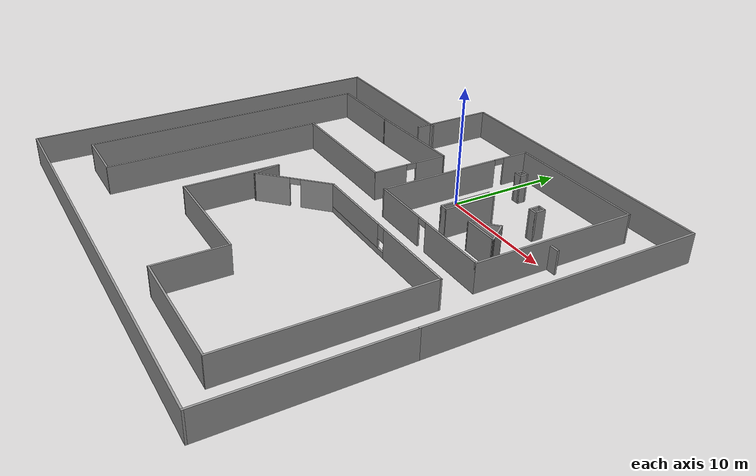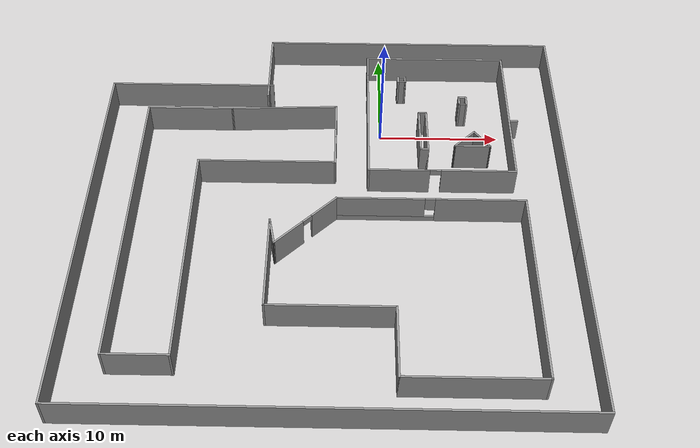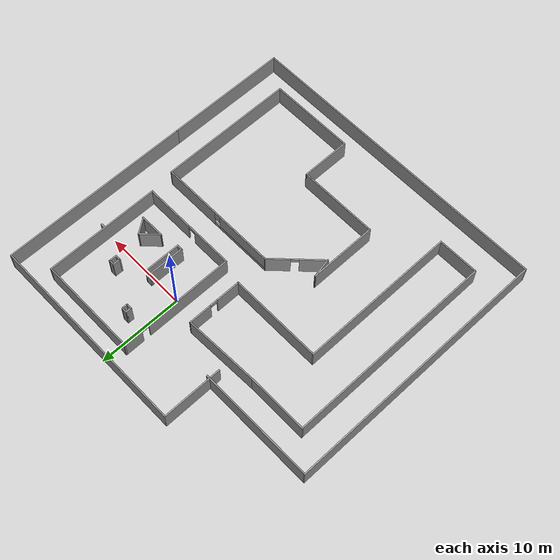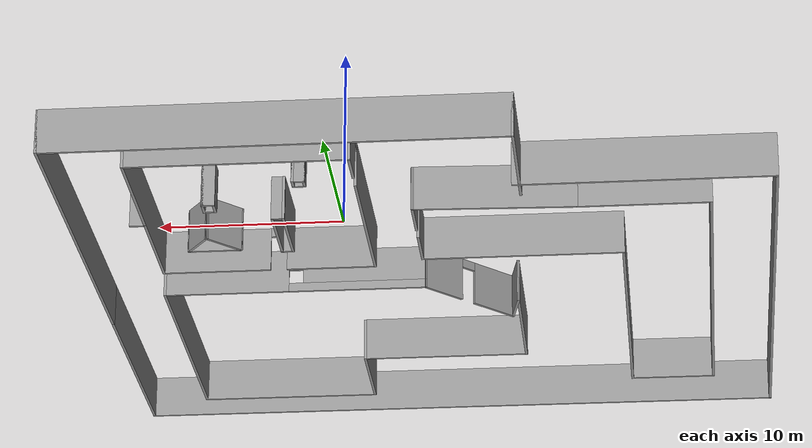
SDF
<?xml version='1.0'?>
<sdf version='1.7'>
  <model name='map'>
    <pose>-4.14453 -9.24534 0 0 -0 0</pose>
    <link name='Door_2'>
      <collision name='Door_2_Collision'>
        <geometry>
          <box>
            <size>0.9 0.17 2</size>
          </box>
        </geometry>
        <pose>0 0 1 0 -0 0</pose>
      </collision>
      <visual name='Door_2_Visual'>
        <pose>0 0 1 0 -0 0</pose>
        <geometry>
          <box>
            <size>0.9 0.17 2</size>
          </box>
        </geometry>
        <material>
          <script>
            <uri>file://media/materials/scripts/gazebo.material</uri>
            <name>Gazebo/Grey</name>
          </script>
        </material>
      </visual>
      <pose>15.3241 9.52502 0 0 -0 0</pose>
    </link>
    <link name='Wall_1'>
      <collision name='Wall_1_Collision'>
        <geometry>
          <box>
            <size>7.25 0.15 2.5</size>
          </box>
        </geometry>
        <pose>0 0 1.25 0 -0 0</pose>
      </collision>
      <visual name='Wall_1_Visual'>
        <pose>0 0 1.25 0 -0 0</pose>
        <geometry>
          <box>
            <size>7.25 0.15 2.5</size>
          </box>
        </geometry>
        <material>
          <script>
            <uri>file://media/materials/scripts/gazebo.material</uri>
            <name>Gazebo/Grey</name>
          </script>
          <ambient>1 1 1 1</ambient>
        </material>
        <meta>
          <layer>0</layer>
        </meta>
      </visual>
      <pose>-5.55 15.425 0 0 -0 1.5708</pose>
    </link>
    <link name='Wall_10'>
      <collision name='Wall_10_Collision'>
        <geometry>
          <box>
            <size>25.25 0.15 2.5</size>
          </box>
        </geometry>
        <pose>0 0 1.25 0 -0 0</pose>
      </collision>
      <visual name='Wall_10_Visual'>
        <pose>0 0 1.25 0 -0 0</pose>
        <geometry>
          <box>
            <size>25.25 0.15 2.5</size>
          </box>
        </geometry>
        <material>
          <script>
            <uri>file://media/materials/scripts/gazebo.material</uri>
            <name>Gazebo/Grey</name>
          </script>
          <ambient>1 1 1 1</ambient>
        </material>
        <meta>
          <layer>0</layer>
        </meta>
      </visual>
      <pose>-15.6008 -2.44365 0 0 -0 -1.5708</pose>
    </link>
    <link name='Wall_11'>
      <collision name='Wall_11_Collision'>
        <geometry>
          <box>
            <size>5 0.15 2.5</size>
          </box>
        </geometry>
        <pose>0 0 1.25 0 -0 0</pose>
      </collision>
      <visual name='Wall_11_Visual'>
        <pose>0 0 1.25 0 -0 0</pose>
        <geometry>
          <box>
            <size>5 0.15 2.5</size>
          </box>
        </geometry>
        <material>
          <script>
            <uri>file://media/materials/scripts/gazebo.material</uri>
            <name>Gazebo/Grey</name>
          </script>
          <ambient>1 1 1 1</ambient>
        </material>
        <meta>
          <layer>0</layer>
        </meta>
      </visual>
      <pose>-13.1758 -14.9936 0 0 -0 0</pose>
    </link>
    <link name='Wall_12'>
      <collision name='Wall_12_Collision'>
        <geometry>
          <box>
            <size>19 0.15 2.5</size>
          </box>
        </geometry>
        <pose>0 0 1.25 0 -0 0</pose>
      </collision>
      <visual name='Wall_12_Visual'>
        <pose>0 0 1.25 0 -0 0</pose>
        <geometry>
          <box>
            <size>19 0.15 2.5</size>
          </box>
        </geometry>
        <material>
          <script>
            <uri>file://media/materials/scripts/gazebo.material</uri>
            <name>Gazebo/Grey</name>
          </script>
          <ambient>1 1 1 1</ambient>
        </material>
        <meta>
          <layer>0</layer>
        </meta>
      </visual>
      <pose>-10.7508 -5.56865 0 0 -0 1.5708</pose>
    </link>
    <link name='Wall_13'>
      <collision name='Wall_13_Collision'>
        <geometry>
          <box>
            <size>11.25 0.15 2.5</size>
          </box>
        </geometry>
        <pose>0 0 1.25 0 -0 0</pose>
      </collision>
      <visual name='Wall_13_Visual'>
        <pose>0 0 1.25 0 -0 0</pose>
        <geometry>
          <box>
            <size>11.25 0.15 2.5</size>
          </box>
        </geometry>
        <material>
          <script>
            <uri>file://media/materials/scripts/gazebo.material</uri>
            <name>Gazebo/Grey</name>
          </script>
          <ambient>1 1 1 1</ambient>
        </material>
        <meta>
          <layer>0</layer>
        </meta>
      </visual>
      <pose>-5.20083 3.85635 0 0 -0 0</pose>
    </link>
    <link name='Wall_14'>
      <pose>0.349171 7.15635 0 0 -0 1.5708</pose>
      <visual name='Wall_14_Visual_0'>
        <pose>-1.86194 0 1.25 0 -0 0</pose>
        <geometry>
          <box>
            <size>3.02612 0.15 2.5</size>
          </box>
        </geometry>
        <material>
          <script>
            <uri>file://media/materials/scripts/gazebo.material</uri>
            <name>Gazebo/Grey</name>
          </script>
          <ambient>1 1 1 1</ambient>
        </material>
        <meta>
          <layer>0</layer>
        </meta>
      </visual>
      <collision name='Wall_14_Collision_0'>
        <geometry>
          <box>
            <size>3.02612 0.15 2.5</size>
          </box>
        </geometry>
        <pose>-1.86194 0 1.25 0 -0 0</pose>
      </collision>
      <visual name='Wall_14_Visual_1'>
        <pose>1.96306 0 1.25 0 -0 0</pose>
        <geometry>
          <box>
            <size>2.82388 0.15 2.5</size>
          </box>
        </geometry>
        <material>
          <script>
            <uri>file://media/materials/scripts/gazebo.material</uri>
            <name>Gazebo/Grey</name>
          </script>
          <ambient>1 1 1 1</ambient>
        </material>
        <meta>
          <layer>0</layer>
        </meta>
      </visual>
      <collision name='Wall_14_Collision_1'>
        <geometry>
          <box>
            <size>2.82388 0.15 2.5</size>
          </box>
        </geometry>
        <pose>1.96306 0 1.25 0 -0 0</pose>
      </collision>
      <visual name='Wall_14_Visual_2'>
        <pose>0.101125 0 2.25 0 -0 0</pose>
        <geometry>
          <box>
            <size>0.9 0.15 0.5</size>
          </box>
        </geometry>
        <material>
          <script>
            <uri>file://media/materials/scripts/gazebo.material</uri>
            <name>Gazebo/Grey</name>
          </script>
          <ambient>1 1 1 1</ambient>
        </material>
        <meta>
          <layer>0</layer>
        </meta>
      </visual>
      <collision name='Wall_14_Collision_2'>
        <geometry>
          <box>
            <size>0.9 0.15 0.5</size>
          </box>
        </geometry>
        <pose>0.101125 0 2.25 0 -0 0</pose>
      </collision>
    </link>
    <link name='Wall_15'>
      <collision name='Wall_15_Collision'>
        <geometry>
          <box>
            <size>9.00692 0.15 2.5</size>
          </box>
        </geometry>
        <pose>0 0 1.25 0 -0 0</pose>
      </collision>
      <visual name='Wall_15_Visual'>
        <pose>0 0 1.25 0 -0 0</pose>
        <geometry>
          <box>
            <size>9.00692 0.15 2.5</size>
          </box>
        </geometry>
        <material>
          <script>
            <uri>file://media/materials/scripts/gazebo.material</uri>
            <name>Gazebo/Grey</name>
          </script>
          <ambient>1 1 1 1</ambient>
        </material>
        <meta>
          <layer>0</layer>
        </meta>
      </visual>
      <pose>-4.07583 10.2814 0 0 -0 -3.10207</pose>
    </link>
    <link name='Wall_17'>
      <collision name='Wall_17_Collision'>
        <geometry>
          <box>
            <size>8.25 0.15 2.5</size>
          </box>
        </geometry>
        <pose>0 0 1.25 0 -0 0</pose>
      </collision>
      <visual name='Wall_17_Visual'>
        <pose>0 0 1.25 0 -0 0</pose>
        <geometry>
          <box>
            <size>8.25 0.15 2.5</size>
          </box>
        </geometry>
        <material>
          <script>
            <uri>file://media/materials/scripts/gazebo.material</uri>
            <name>Gazebo/Grey</name>
          </script>
          <ambient>1 1 1 1</ambient>
        </material>
        <meta>
          <layer>0</layer>
        </meta>
      </visual>
      <pose>-4.57911 -6.53931 0 0 -0 -1.5708</pose>
    </link>
    <link name='Wall_18'>
      <collision name='Wall_18_Collision'>
        <geometry>
          <box>
            <size>9.75 0.15 2.5</size>
          </box>
        </geometry>
        <pose>0 0 1.25 0 -0 0</pose>
      </collision>
      <visual name='Wall_18_Visual'>
        <pose>0 0 1.25 0 -0 0</pose>
        <geometry>
          <box>
            <size>9.75 0.15 2.5</size>
          </box>
        </geometry>
        <material>
          <script>
            <uri>file://media/materials/scripts/gazebo.material</uri>
            <name>Gazebo/Grey</name>
          </script>
          <ambient>1 1 1 1</ambient>
        </material>
        <meta>
          <layer>0</layer>
        </meta>
      </visual>
      <pose>0.220888 -10.5893 0 0 -0 0</pose>
    </link>
    <link name='Wall_19'>
      <collision name='Wall_19_Collision'>
        <geometry>
          <box>
            <size>6 0.15 2.5</size>
          </box>
        </geometry>
        <pose>0 0 1.25 0 -0 0</pose>
      </collision>
      <visual name='Wall_19_Visual'>
        <pose>0 0 1.25 0 -0 0</pose>
        <geometry>
          <box>
            <size>6 0.15 2.5</size>
          </box>
        </geometry>
        <material>
          <script>
            <uri>file://media/materials/scripts/gazebo.material</uri>
            <name>Gazebo/Grey</name>
          </script>
          <ambient>1 1 1 1</ambient>
        </material>
        <meta>
          <layer>0</layer>
        </meta>
      </visual>
      <pose>5.02089 -13.5143 0 0 -0 -1.5708</pose>
    </link>
    <link name='Wall_2'>
      <collision name='Wall_2_Collision'>
        <geometry>
          <box>
            <size>24.75 0.15 2.5</size>
          </box>
        </geometry>
        <pose>0 0 1.25 0 -0 0</pose>
      </collision>
      <visual name='Wall_2_Visual'>
        <pose>0 0 1.25 0 -0 0</pose>
        <geometry>
          <box>
            <size>24.75 0.15 2.5</size>
          </box>
        </geometry>
        <material>
          <script>
            <uri>file://media/materials/scripts/gazebo.material</uri>
            <name>Gazebo/Grey</name>
          </script>
          <ambient>1 1 1 1</ambient>
        </material>
        <meta>
          <layer>0</layer>
        </meta>
      </visual>
      <pose>6.75 18.975 0 0 -0 0</pose>
    </link>
    <link name='Wall_20'>
      <collision name='Wall_20_Collision'>
        <geometry>
          <box>
            <size>10.5 0.15 2.5</size>
          </box>
        </geometry>
        <pose>0 0 1.25 0 -0 0</pose>
      </collision>
      <visual name='Wall_20_Visual'>
        <pose>0 0 1.25 0 -0 0</pose>
        <geometry>
          <box>
            <size>10.5 0.15 2.5</size>
          </box>
        </geometry>
        <material>
          <script>
            <uri>file://media/materials/scripts/gazebo.material</uri>
            <name>Gazebo/Grey</name>
          </script>
          <ambient>1 1 1 1</ambient>
        </material>
        <meta>
          <layer>0</layer>
        </meta>
      </visual>
      <pose>10.1959 -16.4393 0 0 -0 0</pose>
    </link>
    <link name='Wall_21'>
      <collision name='Wall_21_Collision'>
        <geometry>
          <box>
            <size>16.5 0.15 2.5</size>
          </box>
        </geometry>
        <pose>0 0 1.25 0 -0 0</pose>
      </collision>
      <visual name='Wall_21_Visual'>
        <pose>0 0 1.25 0 -0 0</pose>
        <geometry>
          <box>
            <size>16.5 0.15 2.5</size>
          </box>
        </geometry>
        <material>
          <script>
            <uri>file://media/materials/scripts/gazebo.material</uri>
            <name>Gazebo/Grey</name>
          </script>
          <ambient>1 1 1 1</ambient>
        </material>
        <meta>
          <layer>0</layer>
        </meta>
      </visual>
      <pose>15.3709 -8.26431 0 0 -0 1.5708</pose>
    </link>
    <link name='Wall_22'>
      <pose>7.94589 -0.089308 0 0 -0 3.14159</pose>
      <visual name='Wall_22_Visual_0'>
        <pose>-3.91843 0 1.25 0 -0 0</pose>
        <geometry>
          <box>
            <size>7.16314 0.15 2.5</size>
          </box>
        </geometry>
        <material>
          <script>
            <uri>file://media/materials/scripts/gazebo.material</uri>
            <name>Gazebo/Grey</name>
          </script>
          <ambient>1 1 1 1</ambient>
        </material>
        <meta>
          <layer>0</layer>
        </meta>
      </visual>
      <collision name='Wall_22_Collision_0'>
        <geometry>
          <box>
            <size>7.16314 0.15 2.5</size>
          </box>
        </geometry>
        <pose>-3.91843 0 1.25 0 -0 0</pose>
      </collision>
      <visual name='Wall_22_Visual_1'>
        <pose>3.58157 0 0.25 0 -0 0</pose>
        <geometry>
          <box>
            <size>7.83686 0.15 0.5</size>
          </box>
        </geometry>
        <material>
          <script>
            <uri>file://media/materials/scripts/gazebo.material</uri>
            <name>Gazebo/Grey</name>
          </script>
          <ambient>1 1 1 1</ambient>
        </material>
        <meta>
          <layer>0</layer>
        </meta>
      </visual>
      <collision name='Wall_22_Collision_1'>
        <geometry>
          <box>
            <size>7.83686 0.15 0.5</size>
          </box>
        </geometry>
        <pose>3.58157 0 0.25 0 -0 0</pose>
      </collision>
      <visual name='Wall_22_Visual_2'>
        <pose>3.98157 0 1.5 0 -0 0</pose>
        <geometry>
          <box>
            <size>7.03686 0.15 2</size>
          </box>
        </geometry>
        <material>
          <script>
            <uri>file://media/materials/scripts/gazebo.material</uri>
            <name>Gazebo/Grey</name>
          </script>
          <ambient>1 1 1 1</ambient>
        </material>
        <meta>
          <layer>0</layer>
        </meta>
      </visual>
      <collision name='Wall_22_Collision_2'>
        <geometry>
          <box>
            <size>7.03686 0.15 2</size>
          </box>
        </geometry>
        <pose>3.98157 0 1.5 0 -0 0</pose>
      </collision>
      <visual name='Wall_22_Visual_3'>
        <pose>0.063136 0 1.9 0 -0 0</pose>
        <geometry>
          <box>
            <size>0.8 0.15 1.2</size>
          </box>
        </geometry>
        <material>
          <script>
            <uri>file://media/materials/scripts/gazebo.material</uri>
            <name>Gazebo/Grey</name>
          </script>
          <ambient>1 1 1 1</ambient>
        </material>
        <meta>
          <layer>0</layer>
        </meta>
      </visual>
      <collision name='Wall_22_Collision_3'>
        <geometry>
          <box>
            <size>0.8 0.15 1.2</size>
          </box>
        </geometry>
        <pose>0.063136 0 1.9 0 -0 0</pose>
      </collision>
    </link>
    <link name='Wall_23'>
      <pose>-1.81256 -2.42276 0 0 -0 -2.35619</pose>
      <visual name='Wall_23_Visual_0'>
        <pose>-1.9826 0 1.25 0 -0 0</pose>
        <geometry>
          <box>
            <size>2.7848 0.15 2.5</size>
          </box>
        </geometry>
        <material>
          <script>
            <uri>file://media/materials/scripts/gazebo.material</uri>
            <name>Gazebo/Grey</name>
          </script>
          <ambient>1 1 1 1</ambient>
        </material>
        <meta>
          <layer>0</layer>
        </meta>
      </visual>
      <collision name='Wall_23_Collision_0'>
        <geometry>
          <box>
            <size>2.7848 0.15 2.5</size>
          </box>
        </geometry>
        <pose>-1.9826 0 1.25 0 -0 0</pose>
      </collision>
      <visual name='Wall_23_Visual_1'>
        <pose>1.8424 0 1.25 0 -0 0</pose>
        <geometry>
          <box>
            <size>3.0652 0.15 2.5</size>
          </box>
        </geometry>
        <material>
          <script>
            <uri>file://media/materials/scripts/gazebo.material</uri>
            <name>Gazebo/Grey</name>
          </script>
          <ambient>1 1 1 1</ambient>
        </material>
        <meta>
          <layer>0</layer>
        </meta>
      </visual>
      <collision name='Wall_23_Collision_1'>
        <geometry>
          <box>
            <size>3.0652 0.15 2.5</size>
          </box>
        </geometry>
        <pose>1.8424 0 1.25 0 -0 0</pose>
      </collision>
      <visual name='Wall_23_Visual_2'>
        <pose>-0.140199 0 2.25 0 -0 0</pose>
        <geometry>
          <box>
            <size>0.9 0.15 0.5</size>
          </box>
        </geometry>
        <material>
          <script>
            <uri>file://media/materials/scripts/gazebo.material</uri>
            <name>Gazebo/Grey</name>
          </script>
          <ambient>1 1 1 1</ambient>
        </material>
        <meta>
          <layer>0</layer>
        </meta>
      </visual>
      <collision name='Wall_23_Collision_2'>
        <geometry>
          <box>
            <size>0.9 0.15 0.5</size>
          </box>
        </geometry>
        <pose>-0.140199 0 2.25 0 -0 0</pose>
      </collision>
    </link>
    <link name='Wall_24'>
      <collision name='Wall_24_Collision'>
        <geometry>
          <box>
            <size>2.45791 0.15 2.5</size>
          </box>
        </geometry>
        <pose>0 0 1.25 0 -0 0</pose>
      </collision>
      <visual name='Wall_24_Visual'>
        <pose>0 0 1.25 0 -0 0</pose>
        <geometry>
          <box>
            <size>2.45791 0.15 2.5</size>
          </box>
        </geometry>
        <material>
          <script>
            <uri>file://media/materials/scripts/gazebo.material</uri>
            <name>Gazebo/Grey</name>
          </script>
          <ambient>1 1 1 1</ambient>
        </material>
        <meta>
          <layer>0</layer>
        </meta>
      </visual>
      <pose>-4.36257 -3.62276 0 0 -0 1.75957</pose>
    </link>
    <link name='Wall_26'>
      <pose>3.0636 9.98574 0 0 -0 -1.5708</pose>
      <visual name='Wall_26_Visual_0'>
        <pose>-5.81844 0 1.25 0 -0 0</pose>
        <geometry>
          <box>
            <size>2.36312 0.15 2.5</size>
          </box>
        </geometry>
        <material>
          <script>
            <uri>file://media/materials/scripts/gazebo.material</uri>
            <name>Gazebo/Grey</name>
          </script>
          <ambient>1 1 1 1</ambient>
        </material>
        <meta>
          <layer>0</layer>
        </meta>
      </visual>
      <collision name='Wall_26_Collision_0'>
        <geometry>
          <box>
            <size>2.36312 0.15 2.5</size>
          </box>
        </geometry>
        <pose>-5.81844 0 1.25 0 -0 0</pose>
      </collision>
      <visual name='Wall_26_Visual_1'>
        <pose>1.63156 0 1.25 0 -0 0</pose>
        <geometry>
          <box>
            <size>10.7369 0.15 2.5</size>
          </box>
        </geometry>
        <material>
          <script>
            <uri>file://media/materials/scripts/gazebo.material</uri>
            <name>Gazebo/Grey</name>
          </script>
          <ambient>1 1 1 1</ambient>
        </material>
        <meta>
          <layer>0</layer>
        </meta>
      </visual>
      <collision name='Wall_26_Collision_1'>
        <geometry>
          <box>
            <size>10.7369 0.15 2.5</size>
          </box>
        </geometry>
        <pose>1.63156 0 1.25 0 -0 0</pose>
      </collision>
      <visual name='Wall_26_Visual_2'>
        <pose>-4.18688 0 2.25 0 -0 0</pose>
        <geometry>
          <box>
            <size>0.9 0.15 0.5</size>
          </box>
        </geometry>
        <material>
          <script>
            <uri>file://media/materials/scripts/gazebo.material</uri>
            <name>Gazebo/Grey</name>
          </script>
          <ambient>1 1 1 1</ambient>
        </material>
        <meta>
          <layer>0</layer>
        </meta>
      </visual>
      <collision name='Wall_26_Collision_2'>
        <geometry>
          <box>
            <size>0.9 0.15 0.5</size>
          </box>
        </geometry>
        <pose>-4.18688 0 2.25 0 -0 0</pose>
      </collision>
    </link>
    <link name='Wall_27'>
      <pose>8.9886 3.06074 0 0 -0 0</pose>
      <visual name='Wall_27_Visual_0'>
        <pose>-3.49149 0 1.25 0 -0 0</pose>
        <geometry>
          <box>
            <size>5.01701 0.15 2.5</size>
          </box>
        </geometry>
        <material>
          <script>
            <uri>file://media/materials/scripts/gazebo.material</uri>
            <name>Gazebo/Grey</name>
          </script>
          <ambient>1 1 1 1</ambient>
        </material>
        <meta>
          <layer>0</layer>
        </meta>
      </visual>
      <collision name='Wall_27_Collision_0'>
        <geometry>
          <box>
            <size>5.01701 0.15 2.5</size>
          </box>
        </geometry>
        <pose>-3.49149 0 1.25 0 -0 0</pose>
      </collision>
      <visual name='Wall_27_Visual_1'>
        <pose>2.95851 0 1.25 0 -0 0</pose>
        <geometry>
          <box>
            <size>6.08299 0.15 2.5</size>
          </box>
        </geometry>
        <material>
          <script>
            <uri>file://media/materials/scripts/gazebo.material</uri>
            <name>Gazebo/Grey</name>
          </script>
          <ambient>1 1 1 1</ambient>
        </material>
        <meta>
          <layer>0</layer>
        </meta>
      </visual>
      <collision name='Wall_27_Collision_1'>
        <geometry>
          <box>
            <size>6.08299 0.15 2.5</size>
          </box>
        </geometry>
        <pose>2.95851 0 1.25 0 -0 0</pose>
      </collision>
      <visual name='Wall_27_Visual_2'>
        <pose>-0.532987 0 2.25 0 -0 0</pose>
        <geometry>
          <box>
            <size>0.9 0.15 0.5</size>
          </box>
        </geometry>
        <material>
          <script>
            <uri>file://media/materials/scripts/gazebo.material</uri>
            <name>Gazebo/Grey</name>
          </script>
          <ambient>1 1 1 1</ambient>
        </material>
        <meta>
          <layer>0</layer>
        </meta>
      </visual>
      <collision name='Wall_27_Collision_2'>
        <geometry>
          <box>
            <size>0.9 0.15 0.5</size>
          </box>
        </geometry>
        <pose>-0.532987 0 2.25 0 -0 0</pose>
      </collision>
    </link>
    <link name='Wall_28'>
      <collision name='Wall_28_Collision'>
        <geometry>
          <box>
            <size>14 0.15 2.5</size>
          </box>
        </geometry>
        <pose>0 0 1.25 0 -0 0</pose>
      </collision>
      <visual name='Wall_28_Visual'>
        <pose>0 0 1.25 0 -0 0</pose>
        <geometry>
          <box>
            <size>14 0.15 2.5</size>
          </box>
        </geometry>
        <material>
          <script>
            <uri>file://media/materials/scripts/gazebo.material</uri>
            <name>Gazebo/Grey</name>
          </script>
          <ambient>1 1 1 1</ambient>
        </material>
        <meta>
          <layer>0</layer>
        </meta>
      </visual>
      <pose>14.9136 9.98574 0 0 -0 1.5708</pose>
    </link>
    <link name='Wall_29'>
      <collision name='Wall_29_Collision'>
        <geometry>
          <box>
            <size>12 0.15 2.5</size>
          </box>
        </geometry>
        <pose>0 0 1.25 0 -0 0</pose>
      </collision>
      <visual name='Wall_29_Visual'>
        <pose>0 0 1.25 0 -0 0</pose>
        <geometry>
          <box>
            <size>12 0.15 2.5</size>
          </box>
        </geometry>
        <material>
          <script>
            <uri>file://media/materials/scripts/gazebo.material</uri>
            <name>Gazebo/Grey</name>
          </script>
          <ambient>1 1 1 1</ambient>
        </material>
        <meta>
          <layer>0</layer>
        </meta>
      </visual>
      <pose>8.9886 16.9107 0 0 -0 3.14159</pose>
    </link>
    <link name='Wall_3'>
      <collision name='Wall_3_Collision'>
        <geometry>
          <box>
            <size>23.25 0.15 2.5</size>
          </box>
        </geometry>
        <pose>0 0 1.25 0 -0 0</pose>
      </collision>
      <visual name='Wall_3_Visual'>
        <pose>0 0 1.25 0 -0 0</pose>
        <geometry>
          <box>
            <size>23.25 0.15 2.5</size>
          </box>
        </geometry>
        <material>
          <script>
            <uri>file://media/materials/scripts/gazebo.material</uri>
            <name>Gazebo/Grey</name>
          </script>
          <ambient>1 1 1 1</ambient>
        </material>
        <meta>
          <layer>0</layer>
        </meta>
      </visual>
      <pose>19.05 7.425 0 0 -0 -1.5708</pose>
    </link>
    <link name='Wall_31'>
      <collision name='Wall_31_Collision'>
        <geometry>
          <box>
            <size>1 0.15 2.5</size>
          </box>
        </geometry>
        <pose>0 0 1.25 0 -0 0</pose>
      </collision>
      <visual name='Wall_31_Visual'>
        <pose>0 0 1.25 0 -0 0</pose>
        <geometry>
          <box>
            <size>1 0.15 2.5</size>
          </box>
        </geometry>
        <material>
          <script>
            <uri>file://media/materials/scripts/gazebo.material</uri>
            <name>Gazebo/Grey</name>
          </script>
          <ambient>1 1 1 1</ambient>
        </material>
        <meta>
          <layer>0</layer>
        </meta>
      </visual>
      <pose>11.4623 11.4332 0 0 -0 -1.5708</pose>
    </link>
    <link name='Wall_32'>
      <collision name='Wall_32_Collision'>
        <geometry>
          <box>
            <size>0.75 0.15 2.5</size>
          </box>
        </geometry>
        <pose>0 0 1.25 0 -0 0</pose>
      </collision>
      <visual name='Wall_32_Visual'>
        <pose>0 0 1.25 0 -0 0</pose>
        <geometry>
          <box>
            <size>0.75 0.15 2.5</size>
          </box>
        </geometry>
        <material>
          <script>
            <uri>file://media/materials/scripts/gazebo.material</uri>
            <name>Gazebo/Grey</name>
          </script>
          <ambient>1 1 1 1</ambient>
        </material>
        <meta>
          <layer>0</layer>
        </meta>
      </visual>
      <pose>11.1623 11.0082 0 0 -0 3.14159</pose>
    </link>
    <link name='Wall_33'>
      <collision name='Wall_33_Collision'>
        <geometry>
          <box>
            <size>1 0.15 2.5</size>
          </box>
        </geometry>
        <pose>0 0 1.25 0 -0 0</pose>
      </collision>
      <visual name='Wall_33_Visual'>
        <pose>0 0 1.25 0 -0 0</pose>
        <geometry>
          <box>
            <size>1 0.15 2.5</size>
          </box>
        </geometry>
        <material>
          <script>
            <uri>file://media/materials/scripts/gazebo.material</uri>
            <name>Gazebo/Grey</name>
          </script>
          <ambient>1 1 1 1</ambient>
        </material>
        <meta>
          <layer>0</layer>
        </meta>
      </visual>
      <pose>10.8623 11.4332 0 0 -0 1.5708</pose>
    </link>
    <link name='Wall_34'>
      <collision name='Wall_34_Collision'>
        <geometry>
          <box>
            <size>0.75 0.15 2.5</size>
          </box>
        </geometry>
        <pose>0 0 1.25 0 -0 0</pose>
      </collision>
      <visual name='Wall_34_Visual'>
        <pose>0 0 1.25 0 -0 0</pose>
        <geometry>
          <box>
            <size>0.75 0.15 2.5</size>
          </box>
        </geometry>
        <material>
          <script>
            <uri>file://media/materials/scripts/gazebo.material</uri>
            <name>Gazebo/Grey</name>
          </script>
          <ambient>1 1 1 1</ambient>
        </material>
        <meta>
          <layer>0</layer>
        </meta>
      </visual>
      <pose>11.1623 11.8582 0 0 -0 0</pose>
    </link>
    <link name='Wall_36'>
      <collision name='Wall_36_Collision'>
        <geometry>
          <box>
            <size>0.75 0.15 2.5</size>
          </box>
        </geometry>
        <pose>0 0 1.25 0 -0 0</pose>
      </collision>
      <visual name='Wall_36_Visual'>
        <pose>0 0 1.25 0 -0 0</pose>
        <geometry>
          <box>
            <size>0.75 0.15 2.5</size>
          </box>
        </geometry>
        <material>
          <script>
            <uri>file://media/materials/scripts/gazebo.material</uri>
            <name>Gazebo/Grey</name>
          </script>
          <ambient>1 1 1 1</ambient>
        </material>
        <meta>
          <layer>0</layer>
        </meta>
      </visual>
      <pose>5.70982 14.1327 0 0 -0 -1.5708</pose>
    </link>
    <link name='Wall_37'>
      <collision name='Wall_37_Collision'>
        <geometry>
          <box>
            <size>0.75 0.15 2.5</size>
          </box>
        </geometry>
        <pose>0 0 1.25 0 -0 0</pose>
      </collision>
      <visual name='Wall_37_Visual'>
        <pose>0 0 1.25 0 -0 0</pose>
        <geometry>
          <box>
            <size>0.75 0.15 2.5</size>
          </box>
        </geometry>
        <material>
          <script>
            <uri>file://media/materials/scripts/gazebo.material</uri>
            <name>Gazebo/Grey</name>
          </script>
          <ambient>1 1 1 1</ambient>
        </material>
        <meta>
          <layer>0</layer>
        </meta>
      </visual>
      <pose>6.00982 13.8327 0 0 -0 0</pose>
    </link>
    <link name='Wall_38'>
      <collision name='Wall_38_Collision'>
        <geometry>
          <box>
            <size>0.75 0.15 2.5</size>
          </box>
        </geometry>
        <pose>0 0 1.25 0 -0 0</pose>
      </collision>
      <visual name='Wall_38_Visual'>
        <pose>0 0 1.25 0 -0 0</pose>
        <geometry>
          <box>
            <size>0.75 0.15 2.5</size>
          </box>
        </geometry>
        <material>
          <script>
            <uri>file://media/materials/scripts/gazebo.material</uri>
            <name>Gazebo/Grey</name>
          </script>
          <ambient>1 1 1 1</ambient>
        </material>
        <meta>
          <layer>0</layer>
        </meta>
      </visual>
      <pose>6.30982 14.1327 0 0 -0 1.5708</pose>
    </link>
    <link name='Wall_39'>
      <collision name='Wall_39_Collision'>
        <geometry>
          <box>
            <size>0.75 0.15 2.5</size>
          </box>
        </geometry>
        <pose>0 0 1.25 0 -0 0</pose>
      </collision>
      <visual name='Wall_39_Visual'>
        <pose>0 0 1.25 0 -0 0</pose>
        <geometry>
          <box>
            <size>0.75 0.15 2.5</size>
          </box>
        </geometry>
        <material>
          <script>
            <uri>file://media/materials/scripts/gazebo.material</uri>
            <name>Gazebo/Grey</name>
          </script>
          <ambient>1 1 1 1</ambient>
        </material>
        <meta>
          <layer>0</layer>
        </meta>
      </visual>
      <pose>6.00982 14.4327 0 0 -0 3.14159</pose>
    </link>
    <link name='Wall_4'>
      <collision name='Wall_4_Collision'>
        <geometry>
          <box>
            <size>15 0.15 2.5</size>
          </box>
        </geometry>
        <pose>0 0 1.25 0 -0 0</pose>
      </collision>
      <visual name='Wall_4_Visual'>
        <pose>0 0 1.25 0 -0 0</pose>
        <geometry>
          <box>
            <size>15 0.15 2.5</size>
          </box>
        </geometry>
        <material>
          <script>
            <uri>file://media/materials/scripts/gazebo.material</uri>
            <name>Gazebo/Grey</name>
          </script>
          <ambient>1 1 1 1</ambient>
        </material>
        <meta>
          <layer>0</layer>
        </meta>
      </visual>
      <pose>19.05 -11.55 0 0 -0 -1.5708</pose>
    </link>
    <link name='Wall_41'>
      <collision name='Wall_41_Collision'>
        <geometry>
          <box>
            <size>4.5 0.15 2.5</size>
          </box>
        </geometry>
        <pose>0 0 1.25 0 -0 0</pose>
      </collision>
      <visual name='Wall_41_Visual'>
        <pose>0 0 1.25 0 -0 0</pose>
        <geometry>
          <box>
            <size>4.5 0.15 2.5</size>
          </box>
        </geometry>
        <material>
          <script>
            <uri>file://media/materials/scripts/gazebo.material</uri>
            <name>Gazebo/Grey</name>
          </script>
          <ambient>1 1 1 1</ambient>
        </material>
        <meta>
          <layer>0</layer>
        </meta>
      </visual>
      <pose>7.35913 7.67183 0 0 -0 -1.5708</pose>
    </link>
    <link name='Wall_42'>
      <collision name='Wall_42_Collision'>
        <geometry>
          <box>
            <size>0.75 0.15 2.5</size>
          </box>
        </geometry>
        <pose>0 0 1.25 0 -0 0</pose>
      </collision>
      <visual name='Wall_42_Visual'>
        <pose>0 0 1.25 0 -0 0</pose>
        <geometry>
          <box>
            <size>0.75 0.15 2.5</size>
          </box>
        </geometry>
        <material>
          <script>
            <uri>file://media/materials/scripts/gazebo.material</uri>
            <name>Gazebo/Grey</name>
          </script>
          <ambient>1 1 1 1</ambient>
        </material>
        <meta>
          <layer>0</layer>
        </meta>
      </visual>
      <pose>7.65913 5.49683 0 0 -0 0</pose>
    </link>
    <link name='Wall_43'>
      <collision name='Wall_43_Collision'>
        <geometry>
          <box>
            <size>4.5 0.15 2.5</size>
          </box>
        </geometry>
        <pose>0 0 1.25 0 -0 0</pose>
      </collision>
      <visual name='Wall_43_Visual'>
        <pose>0 0 1.25 0 -0 0</pose>
        <geometry>
          <box>
            <size>4.5 0.15 2.5</size>
          </box>
        </geometry>
        <material>
          <script>
            <uri>file://media/materials/scripts/gazebo.material</uri>
            <name>Gazebo/Grey</name>
          </script>
          <ambient>1 1 1 1</ambient>
        </material>
        <meta>
          <layer>0</layer>
        </meta>
      </visual>
      <pose>7.95913 7.67183 0 0 -0 1.5708</pose>
    </link>
    <link name='Wall_44'>
      <collision name='Wall_44_Collision'>
        <geometry>
          <box>
            <size>0.75 0.15 2.5</size>
          </box>
        </geometry>
        <pose>0 0 1.25 0 -0 0</pose>
      </collision>
      <visual name='Wall_44_Visual'>
        <pose>0 0 1.25 0 -0 0</pose>
        <geometry>
          <box>
            <size>0.75 0.15 2.5</size>
          </box>
        </geometry>
        <material>
          <script>
            <uri>file://media/materials/scripts/gazebo.material</uri>
            <name>Gazebo/Grey</name>
          </script>
          <ambient>1 1 1 1</ambient>
        </material>
        <meta>
          <layer>0</layer>
        </meta>
      </visual>
      <pose>7.65913 9.84683 0 0 -0 3.14159</pose>
    </link>
    <link name='Wall_46'>
      <collision name='Wall_46_Collision'>
        <geometry>
          <box>
            <size>2.5 0.15 2.5</size>
          </box>
        </geometry>
        <pose>0 0 1.25 0 -0 0</pose>
      </collision>
      <visual name='Wall_46_Visual'>
        <pose>0 0 1.25 0 -0 0</pose>
        <geometry>
          <box>
            <size>2.5 0.15 2.5</size>
          </box>
        </geometry>
        <material>
          <script>
            <uri>file://media/materials/scripts/gazebo.material</uri>
            <name>Gazebo/Grey</name>
          </script>
          <ambient>1 1 1 1</ambient>
        </material>
        <meta>
          <layer>0</layer>
        </meta>
      </visual>
      <pose>11.0296 6.74492 0 0 -0 -2.35619</pose>
    </link>
    <link name='Wall_47'>
      <collision name='Wall_47_Collision'>
        <geometry>
          <box>
            <size>3 0.15 2.5</size>
          </box>
        </geometry>
        <pose>0 0 1.25 0 -0 0</pose>
      </collision>
      <visual name='Wall_47_Visual'>
        <pose>0 0 1.25 0 -0 0</pose>
        <geometry>
          <box>
            <size>3 0.15 2.5</size>
          </box>
        </geometry>
        <material>
          <script>
            <uri>file://media/materials/scripts/gazebo.material</uri>
            <name>Gazebo/Grey</name>
          </script>
          <ambient>1 1 1 1</ambient>
        </material>
        <meta>
          <layer>0</layer>
        </meta>
      </visual>
      <pose>11.6237 5.91407 0 0 -0 0</pose>
    </link>
    <link name='Wall_48'>
      <collision name='Wall_48_Collision'>
        <geometry>
          <box>
            <size>2.19287 0.15 2.5</size>
          </box>
        </geometry>
        <pose>0 0 1.25 0 -0 0</pose>
      </collision>
      <visual name='Wall_48_Visual'>
        <pose>0 0 1.25 0 -0 0</pose>
        <geometry>
          <box>
            <size>2.19287 0.15 2.5</size>
          </box>
        </geometry>
        <material>
          <script>
            <uri>file://media/materials/scripts/gazebo.material</uri>
            <name>Gazebo/Grey</name>
          </script>
          <ambient>1 1 1 1</ambient>
        </material>
        <meta>
          <layer>0</layer>
        </meta>
      </visual>
      <pose>12.4546 6.74492 0 0 -0 2.19159</pose>
    </link>
    <link name='Wall_5'>
      <collision name='Wall_5_Collision'>
        <geometry>
          <box>
            <size>38.25 0.15 2.5</size>
          </box>
        </geometry>
        <pose>0 0 1.25 0 -0 0</pose>
      </collision>
      <visual name='Wall_5_Visual'>
        <pose>0 0 1.25 0 -0 0</pose>
        <geometry>
          <box>
            <size>38.25 0.15 2.5</size>
          </box>
        </geometry>
        <material>
          <script>
            <uri>file://media/materials/scripts/gazebo.material</uri>
            <name>Gazebo/Grey</name>
          </script>
          <ambient>1 1 1 1</ambient>
        </material>
        <meta>
          <layer>0</layer>
        </meta>
      </visual>
      <pose>0 -18.975 0 0 -0 3.14159</pose>
    </link>
    <link name='Wall_6'>
      <collision name='Wall_6_Collision'>
        <geometry>
          <box>
            <size>32.25 0.15 2.5</size>
          </box>
        </geometry>
        <pose>0 0 1.25 0 -0 0</pose>
      </collision>
      <visual name='Wall_6_Visual'>
        <pose>0 0 1.25 0 -0 0</pose>
        <geometry>
          <box>
            <size>32.25 0.15 2.5</size>
          </box>
        </geometry>
        <material>
          <script>
            <uri>file://media/materials/scripts/gazebo.material</uri>
            <name>Gazebo/Grey</name>
          </script>
          <ambient>1 1 1 1</ambient>
        </material>
        <meta>
          <layer>0</layer>
        </meta>
      </visual>
      <pose>-19.05 -2.925 0 0 -0 1.5708</pose>
    </link>
    <link name='Wall_7'>
      <collision name='Wall_7_Collision'>
        <geometry>
          <box>
            <size>14 0.15 2.5</size>
          </box>
        </geometry>
        <pose>0 0 1.25 0 -0 0</pose>
      </collision>
      <visual name='Wall_7_Visual'>
        <pose>0 0 1.25 0 -0 0</pose>
        <geometry>
          <box>
            <size>14 0.15 2.5</size>
          </box>
        </geometry>
        <material>
          <script>
            <uri>file://media/materials/scripts/gazebo.material</uri>
            <name>Gazebo/Grey</name>
          </script>
          <ambient>1 1 1 1</ambient>
        </material>
        <meta>
          <layer>0</layer>
        </meta>
      </visual>
      <pose>-12.125 13.125 0 0 -0 0</pose>
    </link>
    <link name='Wall_9'>
      <collision name='Wall_9_Collision'>
        <geometry>
          <box>
            <size>7.25 0.15 2.5</size>
          </box>
        </geometry>
        <pose>0 0 1.25 0 -0 0</pose>
      </collision>
      <visual name='Wall_9_Visual'>
        <pose>0 0 1.25 0 -0 0</pose>
        <geometry>
          <box>
            <size>7.25 0.15 2.5</size>
          </box>
        </geometry>
        <material>
          <script>
            <uri>file://media/materials/scripts/gazebo.material</uri>
            <name>Gazebo/Grey</name>
          </script>
          <ambient>1 1 1 1</ambient>
        </material>
        <meta>
          <layer>0</layer>
        </meta>
      </visual>
      <pose>-12.0508 10.1064 0 0 -0 3.14159</pose>
    </link>
    <static>1</static>
  </model>
</sdf>
